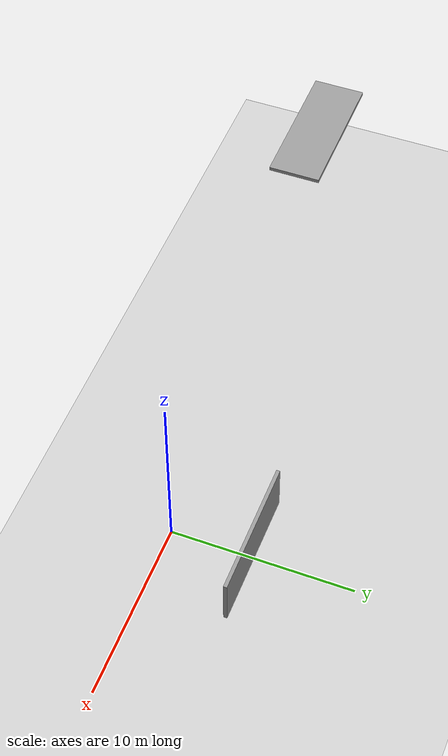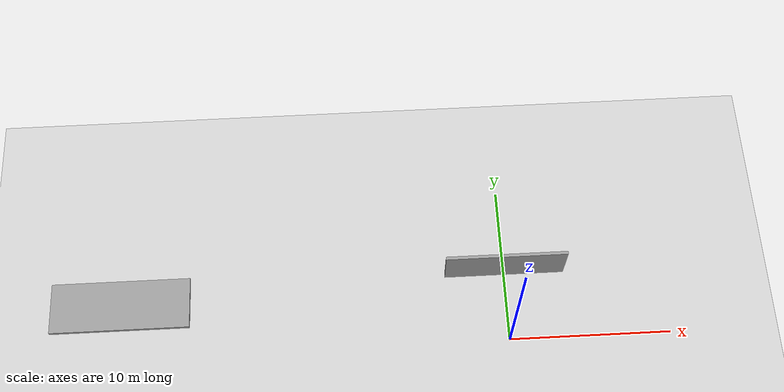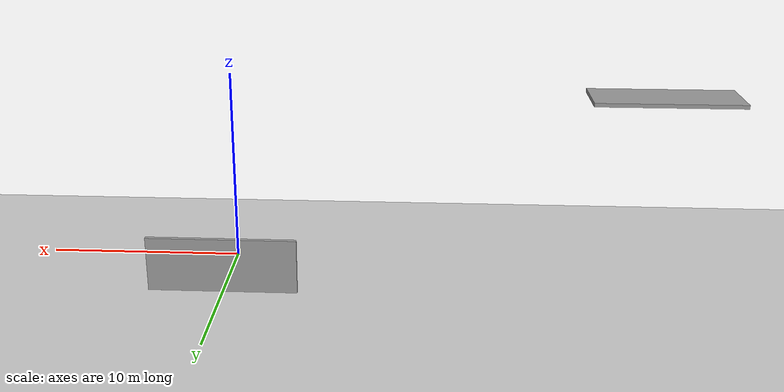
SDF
<?xml version="1.0"?>
<sdf version="1.5">
  <world name="default">
    <physics type="ode">
      <ode>
        <solver>
          <type>quick</type>
          <iters>100</iters>
          <sor>1.0</sor>
        </solver>
        <constraints>
          <cfm>0.0</cfm>
          <erp>0.9</erp>
          <contact_max_correcting_vel>0.1</contact_max_correcting_vel>
          <contact_surface_layer>0.0</contact_surface_layer>
        </constraints>
      </ode>
      <real_time_update_rate>400</real_time_update_rate>
      <max_step_size>0.0025</max_step_size>
    </physics>

    <scene>
      <sky>
      </sky>
      <ambient>0.4 0.4 0.4 1</ambient>
      <background>0.25 0.25 0.25 1</background>
    </scene>

    <gui fullscreen='0'>
      <camera name='user_camera'>
        <pose frame=''>-5.0 -5.0 8.0 0.0 0.6 0.785</pose>
        <view_controller>orbit</view_controller>
        <projection_type>perspective</projection_type>
      </camera>
    </gui>

    <model name='grey_wall'>
      <static>1</static>
      <link name='link'>
        <pose frame=''>0 0 1.4 0 -0 0</pose>
        <collision name='collision'>
          <geometry>
            <box>
              <size>7.5 0.2 2.8</size>
            </box>
          </geometry>
          <max_contacts>10</max_contacts>
          <surface>
            <contact>
              <ode/>
            </contact>
            <bounce/>
            <friction>
              <torsional>
                <ode/>
              </torsional>
              <ode/>
            </friction>
          </surface>
        </collision>
        <visual name='visual'>
          <cast_shadows>0</cast_shadows>
          <geometry>
            <box>
              <size>7.5 0.2 2.8</size>
            </box>
          </geometry>
          <material>
            <script>
              <uri>model://grey_wall/materials/scripts</uri>
              <uri>model://grey_wall/materials/textures</uri>
              <name>vrc/grey_wall</name>
            </script>
          </material>
        </visual>
        <self_collide>0</self_collide>
        <enable_wind>0</enable_wind>
        <kinematic>0</kinematic>
      </link>
      <pose frame=''>0.020157 4.46054 0 0 -0 0</pose>
    </model>
    <model name='grey_wall_0'>
      <static>1</static>
      <link name='link'>
        <pose frame=''>-11 0 9 -1.57 -0 0</pose>
        <collision name='collision'>
          <geometry>
            <box>
              <size>7.5 0.2 2.8</size>
            </box>
          </geometry>
          <max_contacts>10</max_contacts>
          <surface>
            <contact>
              <ode/>
            </contact>
            <bounce/>
            <friction>
              <torsional>
                <ode/>
              </torsional>
              <ode/>
            </friction>
          </surface>
        </collision>
        <visual name='visual'>
          <cast_shadows>0</cast_shadows>
          <geometry>
            <box>
              <size>7.5 0.2 2.8</size>
            </box>
          </geometry>
          <material>
            <script>
              <uri>model://grey_wall/materials/scripts</uri>
              <uri>model://grey_wall/materials/textures</uri>
              <name>vrc/grey_wall</name>
            </script>
          </material>
        </visual>
        <self_collide>0</self_collide>
        <enable_wind>0</enable_wind>
        <kinematic>0</kinematic>
      </link>
      <pose frame=''>-10.9382 -0.07868 0 0 -0 0</pose>
    </model>

    <model name="ground_plane">
      <static>true</static>
      <link name="link">
        <collision name="collision">
          <geometry>
            <plane>
              <normal>0 0 1</normal>
              <size>1000 1000</size>
            </plane>
          </geometry>
          <surface>
            <friction>
              <ode>
                <mu>1</mu>
                <mu2>1</mu2>
              </ode>
            </friction>
          </surface>
        </collision>
        <visual name="runway">
          <pose>000 0 0.005 0 0 0</pose>
          <cast_shadows>false</cast_shadows>
          <geometry>
            <plane>
              <normal>0 0 1</normal>
              <size>1000 45</size>
            </plane>
          </geometry>
          <material>
            <script>
              <uri>file://media/materials/scripts/gazebo.material</uri>
              <name>Gazebo/Runway</name>
            </script>
          </material>
        </visual>

        <visual name="grass">
          <pose>0 0 -0.1 0 0 0</pose>
          <cast_shadows>false</cast_shadows>
          <geometry>
            <plane>
              <normal>0 0 1</normal>
              <size>1000 1000</size>
            </plane>
          </geometry>
          <material>
            <script>
              <uri>file://media/materials/scripts/gazebo.material</uri>
              <name>Gazebo/Grass</name>
            </script>
          </material>
        </visual>

      </link>
    </model>

    <include>
      <uri>model://sun</uri>
    </include>

    <wind>
      <linear_velocity>0 0 0</linear_velocity>
    </wind>

    <!-- Load the plugin for the wind -->
    <plugin name="wind" filename="libWindPlugin.so">
      <horizontal>
        <magnitude>
          <time_for_rise>10</time_for_rise>
          <sin>
            <amplitude_percent>0.05</amplitude_percent>
            <period>60</period>
          </sin>
          <noise type="gaussian">
           <mean>0</mean>
           <stddev>0.0002</stddev>
          </noise>
        </magnitude>
        <direction>
          <time_for_rise>30</time_for_rise>
          <sin>
            <amplitude>5</amplitude>
            <period>20</period>
          </sin>
          <noise type="gaussian">
           <mean>0</mean>
           <stddev>0.03</stddev>
          </noise>
        </direction>
      </horizontal>
      <vertical>
        <noise type="gaussian">
         <mean>0</mean>
         <stddev>0.03</stddev>
        </noise>
      </vertical>
    </plugin>
  </world>
</sdf>

<sdf version="1.5">
    <world name="runway">
        <include>
            <uri>model://ground_plane</uri>
        </include>
    </world>
</sdf>
